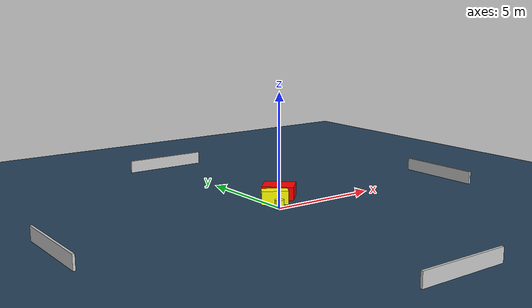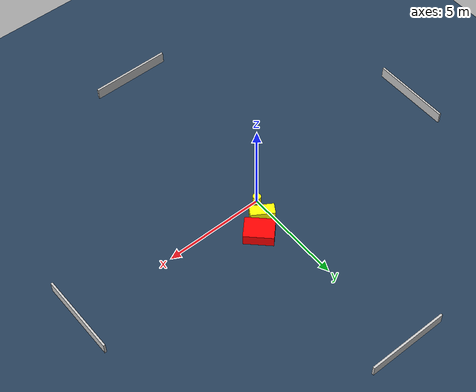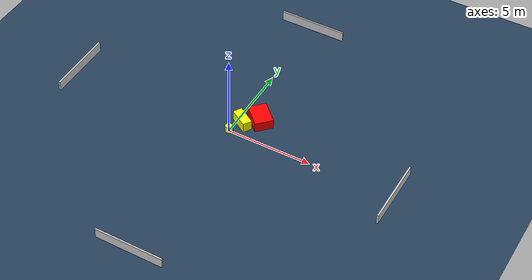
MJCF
<?xml version="1.0" ?>
<mujoco model="generated_environment">
  <option timestep="0.01" integrator="RK4" cone="elliptic"/>
  <default>
    <geom density="1"/>
  </default>
  <asset>
    <texture builtin="gradient" height="3072" name="skybox" rgb1="0.3 0.5 0.7" rgb2="0 0 0" type="skybox" width="512"/>
    <texture builtin="checker" height="300" name="groundplane" rgb1="0.2 0.3 0.4" rgb2="0.1 0.2 0.3" type="2d" width="300"/>
    <material name="groundplane" reflectance="0.2" texrepeat="5 5" texture="groundplane"/>
  </asset>
  <worldbody>
    <light dir="0 0 -1" directional="true" pos="0 0 1.5"/>
    <geom condim="3" friction="0.5 0.005 0.001" material="groundplane" name="floor" pos="0 0 0" size="0 0 0.05" type="plane"/>
    <body name="walls">
      <geom name="wall_1" condim="4" pos="-10.0 0.0 0.3" rgba="0.800000011920929 0.800000011920929 0.800000011920929 1.0" size="0.05 2.0 0.3" type="box"/>
      <geom name="wall_2" condim="4" pos="10.0 0.0 0.3" rgba="0.800000011920929 0.800000011920929 0.800000011920929 1.0" size="0.05 2.0 0.3" type="box"/>
      <geom name="wall_3" condim="4" pos="0.0 -10.0 0.3" rgba="0.800000011920929 0.800000011920929 0.800000011920929 1.0" size="2.0 0.05 0.3" type="box"/>
      <geom name="wall_4" condim="4" pos="0.0 10.0 0.3" rgba="0.800000011920929 0.800000011920929 0.800000011920929 1.0" size="2.0 0.05 0.3" type="box"/>
    </body>
    <body name="robot">
      <joint name="joint_x" type="slide" pos="0 0 0" axis="1 0 0"/>
      <joint name="joint_y" type="slide" pos="0 0 0" axis="0 1 0"/>
      <geom name="robot" type="cylinder" pos="0.0 0.0 0.2" size="0.2 0.2 0.0" mass="5.0" friction="1.0 0.005 0.0001" condim="4" rgba="1.0 1.0 0.0 1.0"/>
    </body>
    <body name="obstacle_1_movable">
      <geom name="obstacle_1_movable" condim="4" pos="0.3780941192806605 0.8391067065095568 0.3" euler="0 0 327.6559357854245" friction="0.0 0.005 0.001" rgba="1.0 1.0 0.0 1.0" size="0.5911218038874305 0.27573254006664555 0.3" type="box" mass="0.1"/>
      <joint type="free"/>
    </body>
    <body name="obstacle_2_static">
      <geom name="obstacle_2_static" condim="4" pos="1.1357798099704548 1.5378633306474687 0.3" euler="0 0 315.742980067916" friction="0.0 0.005 0.001" rgba="1.0 0.0 0.0 1.0" size="0.7182922647340453 0.5391185426944058 0.3" type="box"/>
    </body>
  </worldbody>
  <actuator>
    <motor name="actuator_x" joint="joint_x" gear="1" ctrlrange="-1 1"/>
    <motor name="actuator_y" joint="joint_y" gear="1" ctrlrange="-1 1"/>
  </actuator>
</mujoco>
